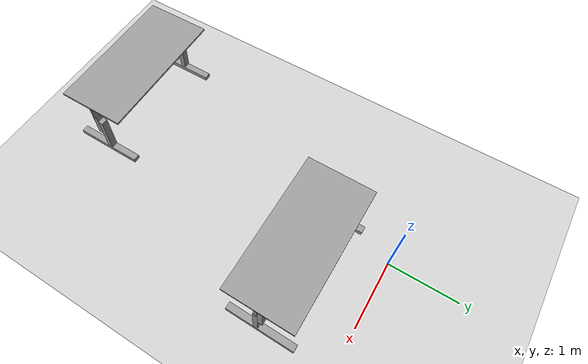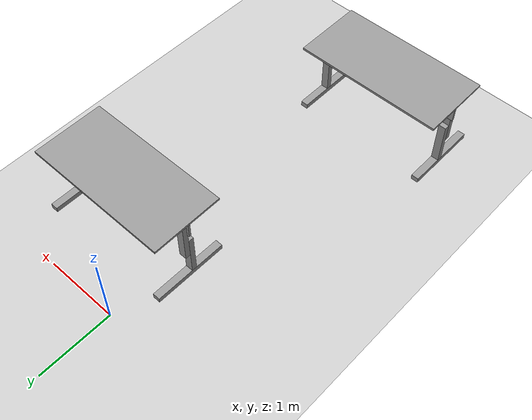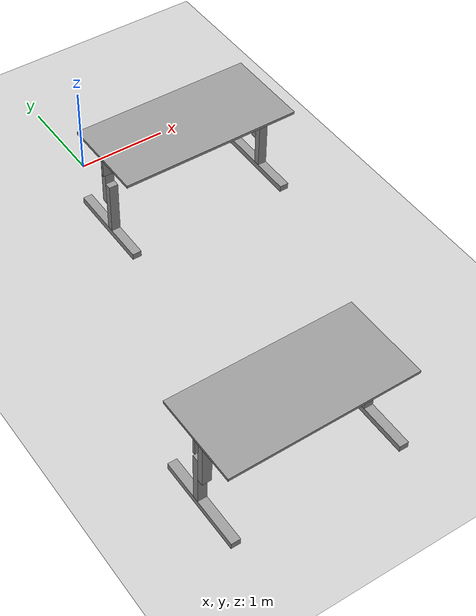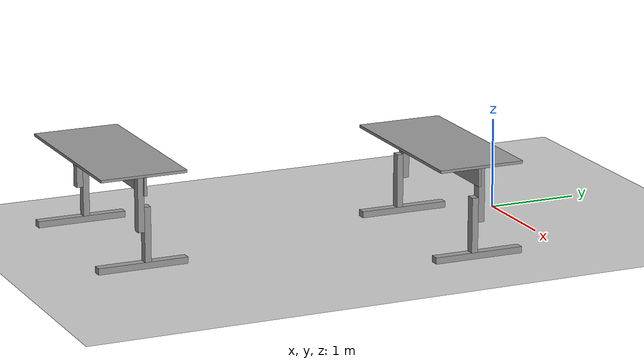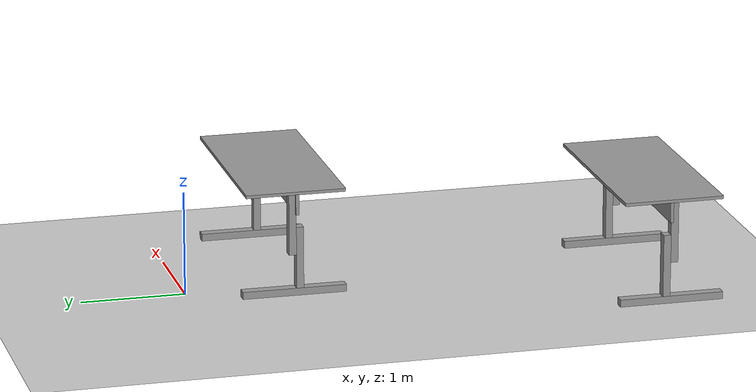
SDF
<sdf version="1.6">
 <world name="default">
  <model name="ground_plane">
   <static>1</static>
   <link name="link">
    <collision name="collision">
     <geometry><plane><normal>0 0 1</normal><size>100 100</size></plane></geometry>
     <surface>
      <contact><collide_bitmask>65535</collide_bitmask></contact>
      <friction><ode><mu>100</mu><mu2>50</mu2></ode></friction>
     </surface>
    </collision>
    <visual name="visual">
     <cast_shadows>0</cast_shadows>
     <geometry><plane><normal>0 0 1</normal><size>100 100</size></plane></geometry>
     <material>
      <script><uri>file://media/materials/scripts/gazebo.material</uri><name>Gazebo/Grey</name></script>
     </material>
    </visual>
   </link>
  </model>
  <model name="desk">
   <link name="link_0">
    <inertial>
     <mass>1</mass>
     <inertia>
      <ixx>0.166667</ixx>
      <ixy>0</ixy>
      <ixz>0</ixz>
      <iyy>0.166667</iyy>
      <iyz>0</iyz>
      <izz>0.166667</izz>
     </inertia>
    </inertial>
    <pose>-0.922434 0.005357 -0.386429 0 -0 0</pose>
    <visual name="visual">
     <geometry><box><size>0.1 1 0.07</size></box></geometry>
     <material>
      <lighting>1</lighting>
      <script><uri>file://media/materials/scripts/gazebo.material</uri><name>Gazebo/Grey</name></script>
      <shader type="pixel"><normal_map>__default__</normal_map></shader>
      <ambient>0.3 0.3 0.3 1</ambient>
      <diffuse>0.7 0.7 0.7 1</diffuse>
      <specular>0.01 0.01 0.01 1</specular>
      <emissive>0 0 0 1</emissive>
     </material>
    </visual>
    <collision name="collision">
     <geometry><box><size>0.1 1 0.07</size></box></geometry>
     <surface>
      <friction>
       <ode><mu>1</mu><mu2>1</mu2><fdir1>0 0 0</fdir1><slip1>0</slip1><slip2>0</slip2></ode>
       <torsional>
        <coefficient>1</coefficient>
        <patch_radius>0</patch_radius>
        <surface_radius>0</surface_radius>
        <use_patch_radius>1</use_patch_radius>
        <ode><slip>0</slip></ode>
       </torsional>
      </friction>
      <bounce><restitution_coefficient>0</restitution_coefficient><threshold>1e+06</threshold></bounce>
      <contact>
       <collide_without_contact>0</collide_without_contact>
       <collide_without_contact_bitmask>1</collide_without_contact_bitmask>
       <collide_bitmask>1</collide_bitmask>
       <ode>
        <soft_cfm>0</soft_cfm>
        <soft_erp>0.2</soft_erp>
        <kp>1e+13</kp>
        <kd>1</kd>
        <max_vel>0.01</max_vel>
        <min_depth>0</min_depth>
       </ode>
       <bullet>
        <split_impulse>1</split_impulse>
        <split_impulse_penetration_threshold>-0.01</split_impulse_penetration_threshold>
        <soft_cfm>0</soft_cfm>
        <soft_erp>0.2</soft_erp>
        <kp>1e+13</kp>
        <kd>1</kd>
       </bullet>
      </contact>
     </surface>
    </collision>
   </link>
   <link name="link_0_clone">
    <inertial>
     <mass>1</mass>
     <inertia>
      <ixx>0.166667</ixx>
      <ixy>0</ixy>
      <ixz>0</ixz>
      <iyy>0.166667</iyy>
      <iyz>0</iyz>
      <izz>0.166667</izz>
     </inertia>
    </inertial>
    <pose>0.913246 0.005357 -0.386429 0 -0 0</pose>
    <visual name="visual">
     <geometry><box><size>0.1 1 0.07</size></box></geometry>
     <material>
      <lighting>1</lighting>
      <script><uri>file://media/materials/scripts/gazebo.material</uri><name>Gazebo/Grey</name></script>
      <shader type="pixel"><normal_map>__default__</normal_map></shader>
      <ambient>0.3 0.3 0.3 1</ambient>
      <diffuse>0.7 0.7 0.7 1</diffuse>
      <specular>0.01 0.01 0.01 1</specular>
      <emissive>0 0 0 1</emissive>
     </material>
    </visual>
    <collision name="collision">
     <geometry><box><size>0.1 1 0.07</size></box></geometry>
     <surface>
      <friction>
       <ode><mu>1</mu><mu2>1</mu2><fdir1>0 0 0</fdir1><slip1>0</slip1><slip2>0</slip2></ode>
       <torsional>
        <coefficient>1</coefficient>
        <patch_radius>0</patch_radius>
        <surface_radius>0</surface_radius>
        <use_patch_radius>1</use_patch_radius>
        <ode><slip>0</slip></ode>
       </torsional>
      </friction>
      <bounce><restitution_coefficient>0</restitution_coefficient><threshold>1e+06</threshold></bounce>
      <contact>
       <collide_without_contact>0</collide_without_contact>
       <collide_without_contact_bitmask>1</collide_without_contact_bitmask>
       <collide_bitmask>1</collide_bitmask>
       <ode>
        <soft_cfm>0</soft_cfm>
        <soft_erp>0.2</soft_erp>
        <kp>1e+13</kp>
        <kd>1</kd>
        <max_vel>0.01</max_vel>
        <min_depth>0</min_depth>
       </ode>
       <bullet>
        <split_impulse>1</split_impulse>
        <split_impulse_penetration_threshold>-0.01</split_impulse_penetration_threshold>
        <soft_cfm>0</soft_cfm>
        <soft_erp>0.2</soft_erp>
        <kp>1e+13</kp>
        <kd>1</kd>
       </bullet>
      </contact>
     </surface>
    </collision>
   </link>
   <link name="link_1">
    <inertial>
     <mass>1</mass>
     <inertia>
      <ixx>0.166667</ixx>
      <ixy>0</ixy>
      <ixz>0</ixz>
      <iyy>0.166667</iyy>
      <iyz>0</iyz>
      <izz>0.166667</izz>
     </inertia>
    </inertial>
    <pose>-0.922434 -0.047143 -0.051429 0 -0 0</pose>
    <visual name="visual">
     <geometry><box><size>0.1 0.07 0.6</size></box></geometry>
     <material>
      <lighting>1</lighting>
      <script><uri>file://media/materials/scripts/gazebo.material</uri><name>Gazebo/Grey</name></script>
      <shader type="pixel"><normal_map>__default__</normal_map></shader>
      <ambient>0.3 0.3 0.3 1</ambient>
      <diffuse>0.7 0.7 0.7 1</diffuse>
      <specular>0.01 0.01 0.01 1</specular>
      <emissive>0 0 0 1</emissive>
     </material>
    </visual>
    <collision name="collision">
     <geometry><box><size>0.1 0.07 0.6</size></box></geometry>
     <surface>
      <friction>
       <ode><mu>1</mu><mu2>1</mu2><fdir1>0 0 0</fdir1><slip1>0</slip1><slip2>0</slip2></ode>
       <torsional>
        <coefficient>1</coefficient>
        <patch_radius>0</patch_radius>
        <surface_radius>0</surface_radius>
        <use_patch_radius>1</use_patch_radius>
        <ode><slip>0</slip></ode>
       </torsional>
      </friction>
      <bounce><restitution_coefficient>0</restitution_coefficient><threshold>1e+06</threshold></bounce>
      <contact>
       <collide_without_contact>0</collide_without_contact>
       <collide_without_contact_bitmask>1</collide_without_contact_bitmask>
       <collide_bitmask>1</collide_bitmask>
       <ode>
        <soft_cfm>0</soft_cfm>
        <soft_erp>0.2</soft_erp>
        <kp>1e+13</kp>
        <kd>1</kd>
        <max_vel>0.01</max_vel>
        <min_depth>0</min_depth>
       </ode>
       <bullet>
        <split_impulse>1</split_impulse>
        <split_impulse_penetration_threshold>-0.01</split_impulse_penetration_threshold>
        <soft_cfm>0</soft_cfm>
        <soft_erp>0.2</soft_erp>
        <kp>1e+13</kp>
        <kd>1</kd>
       </bullet>
      </contact>
     </surface>
    </collision>
   </link>
   <link name="link_1_clone">
    <inertial>
     <mass>1</mass>
     <inertia>
      <ixx>0.166667</ixx>
      <ixy>0</ixy>
      <ixz>0</ixz>
      <iyy>0.166667</iyy>
      <iyz>0</iyz>
      <izz>0.166667</izz>
     </inertia>
    </inertial>
    <pose>-0.922434 0.022857 0.278571 0 -0 0</pose>
    <visual name="visual">
     <geometry><box><size>0.1 0.07 0.6</size></box></geometry>
     <material>
      <lighting>1</lighting>
      <script><uri>file://media/materials/scripts/gazebo.material</uri><name>Gazebo/Grey</name></script>
      <shader type="pixel"><normal_map>__default__</normal_map></shader>
      <ambient>0.3 0.3 0.3 1</ambient>
      <diffuse>0.7 0.7 0.7 1</diffuse>
      <specular>0.01 0.01 0.01 1</specular>
      <emissive>0 0 0 1</emissive>
     </material>
    </visual>
    <collision name="collision">
     <geometry><box><size>0.1 0.07 0.6</size></box></geometry>
     <surface>
      <friction>
       <ode><mu>1</mu><mu2>1</mu2><fdir1>0 0 0</fdir1><slip1>0</slip1><slip2>0</slip2></ode>
       <torsional>
        <coefficient>1</coefficient>
        <patch_radius>0</patch_radius>
        <surface_radius>0</surface_radius>
        <use_patch_radius>1</use_patch_radius>
        <ode><slip>0</slip></ode>
       </torsional>
      </friction>
      <bounce><restitution_coefficient>0</restitution_coefficient><threshold>1e+06</threshold></bounce>
      <contact>
       <collide_without_contact>0</collide_without_contact>
       <collide_without_contact_bitmask>1</collide_without_contact_bitmask>
       <collide_bitmask>1</collide_bitmask>
       <ode>
        <soft_cfm>0</soft_cfm>
        <soft_erp>0.2</soft_erp>
        <kp>1e+13</kp>
        <kd>1</kd>
        <max_vel>0.01</max_vel>
        <min_depth>0</min_depth>
       </ode>
       <bullet>
        <split_impulse>1</split_impulse>
        <split_impulse_penetration_threshold>-0.01</split_impulse_penetration_threshold>
        <soft_cfm>0</soft_cfm>
        <soft_erp>0.2</soft_erp>
        <kp>1e+13</kp>
        <kd>1</kd>
       </bullet>
      </contact>
     </surface>
    </collision>
   </link>
   <link name="link_1_clone_0">
    <inertial>
     <mass>1</mass>
     <inertia>
      <ixx>0.166667</ixx>
      <ixy>0</ixy>
      <ixz>0</ixz>
      <iyy>0.166667</iyy>
      <iyz>0</iyz>
      <izz>0.166667</izz>
     </inertia>
    </inertial>
    <pose>0.913246 -0.047143 -0.051429 0 -0 0</pose>
    <visual name="visual">
     <geometry><box><size>0.1 0.07 0.6</size></box></geometry>
     <material>
      <lighting>1</lighting>
      <script><uri>file://media/materials/scripts/gazebo.material</uri><name>Gazebo/Grey</name></script>
      <shader type="pixel"><normal_map>__default__</normal_map></shader>
      <ambient>0.3 0.3 0.3 1</ambient>
      <diffuse>0.7 0.7 0.7 1</diffuse>
      <specular>0.01 0.01 0.01 1</specular>
      <emissive>0 0 0 1</emissive>
     </material>
    </visual>
    <collision name="collision">
     <geometry><box><size>0.1 0.07 0.6</size></box></geometry>
     <surface>
      <friction>
       <ode><mu>1</mu><mu2>1</mu2><fdir1>0 0 0</fdir1><slip1>0</slip1><slip2>0</slip2></ode>
       <torsional>
        <coefficient>1</coefficient>
        <patch_radius>0</patch_radius>
        <surface_radius>0</surface_radius>
        <use_patch_radius>1</use_patch_radius>
        <ode><slip>0</slip></ode>
       </torsional>
      </friction>
      <bounce><restitution_coefficient>0</restitution_coefficient><threshold>1e+06</threshold></bounce>
      <contact>
       <collide_without_contact>0</collide_without_contact>
       <collide_without_contact_bitmask>1</collide_without_contact_bitmask>
       <collide_bitmask>1</collide_bitmask>
       <ode>
        <soft_cfm>0</soft_cfm>
        <soft_erp>0.2</soft_erp>
        <kp>1e+13</kp>
        <kd>1</kd>
        <max_vel>0.01</max_vel>
        <min_depth>0</min_depth>
       </ode>
       <bullet>
        <split_impulse>1</split_impulse>
        <split_impulse_penetration_threshold>-0.01</split_impulse_penetration_threshold>
        <soft_cfm>0</soft_cfm>
        <soft_erp>0.2</soft_erp>
        <kp>1e+13</kp>
        <kd>1</kd>
       </bullet>
      </contact>
     </surface>
    </collision>
   </link>
   <link name="link_1_clone_clone">
    <inertial>
     <mass>1</mass>
     <inertia>
      <ixx>0.166667</ixx>
      <ixy>0</ixy>
      <ixz>0</ixz>
      <iyy>0.166667</iyy>
      <iyz>0</iyz>
      <izz>0.166667</izz>
     </inertia>
    </inertial>
    <pose>0.913246 0.022857 0.278571 0 -0 0</pose>
    <visual name="visual">
     <geometry><box><size>0.1 0.07 0.6</size></box></geometry>
     <material>
      <lighting>1</lighting>
      <script><uri>file://media/materials/scripts/gazebo.material</uri><name>Gazebo/Grey</name></script>
      <shader type="pixel"><normal_map>__default__</normal_map></shader>
      <ambient>0.3 0.3 0.3 1</ambient>
      <diffuse>0.7 0.7 0.7 1</diffuse>
      <specular>0.01 0.01 0.01 1</specular>
      <emissive>0 0 0 1</emissive>
     </material>
    </visual>
    <collision name="collision">
     <geometry><box><size>0.1 0.07 0.6</size></box></geometry>
     <surface>
      <friction>
       <ode><mu>1</mu><mu2>1</mu2><fdir1>0 0 0</fdir1><slip1>0</slip1><slip2>0</slip2></ode>
       <torsional>
        <coefficient>1</coefficient>
        <patch_radius>0</patch_radius>
        <surface_radius>0</surface_radius>
        <use_patch_radius>1</use_patch_radius>
        <ode><slip>0</slip></ode>
       </torsional>
      </friction>
      <bounce><restitution_coefficient>0</restitution_coefficient><threshold>1e+06</threshold></bounce>
      <contact>
       <collide_without_contact>0</collide_without_contact>
       <collide_without_contact_bitmask>1</collide_without_contact_bitmask>
       <collide_bitmask>1</collide_bitmask>
       <ode>
        <soft_cfm>0</soft_cfm>
        <soft_erp>0.2</soft_erp>
        <kp>1e+13</kp>
        <kd>1</kd>
        <max_vel>0.01</max_vel>
        <min_depth>0</min_depth>
       </ode>
       <bullet>
        <split_impulse>1</split_impulse>
        <split_impulse_penetration_threshold>-0.01</split_impulse_penetration_threshold>
        <soft_cfm>0</soft_cfm>
        <soft_erp>0.2</soft_erp>
        <kp>1e+13</kp>
        <kd>1</kd>
       </bullet>
      </contact>
     </surface>
    </collision>
   </link>
   <link name="link_2">
    <inertial>
     <mass>1</mass>
     <inertia>
      <ixx>0.166667</ixx>
      <ixy>0</ixy>
      <ixz>0</ixz>
      <iyy>0.166667</iyy>
      <iyz>0</iyz>
      <izz>0.166667</izz>
     </inertia>
    </inertial>
    <pose>-0.002434 -0.017143 0.478571 0 -0 0</pose>
    <visual name="visual">
     <geometry><box><size>2 0.03 0.2</size></box></geometry>
     <material>
      <lighting>1</lighting>
      <script><uri>file://media/materials/scripts/gazebo.material</uri><name>Gazebo/Grey</name></script>
      <shader type="pixel"><normal_map>__default__</normal_map></shader>
      <ambient>0.3 0.3 0.3 1</ambient>
      <diffuse>0.7 0.7 0.7 1</diffuse>
      <specular>0.01 0.01 0.01 1</specular>
      <emissive>0 0 0 1</emissive>
     </material>
    </visual>
    <collision name="collision">
     <geometry><box><size>2 0.03 0.2</size></box></geometry>
     <surface>
      <friction>
       <ode><mu>1</mu><mu2>1</mu2><fdir1>0 0 0</fdir1><slip1>0</slip1><slip2>0</slip2></ode>
       <torsional>
        <coefficient>1</coefficient>
        <patch_radius>0</patch_radius>
        <surface_radius>0</surface_radius>
        <use_patch_radius>1</use_patch_radius>
        <ode><slip>0</slip></ode>
       </torsional>
      </friction>
      <bounce><restitution_coefficient>0</restitution_coefficient><threshold>1e+06</threshold></bounce>
      <contact>
       <collide_without_contact>0</collide_without_contact>
       <collide_without_contact_bitmask>1</collide_without_contact_bitmask>
       <collide_bitmask>1</collide_bitmask>
       <ode>
        <soft_cfm>0</soft_cfm>
        <soft_erp>0.2</soft_erp>
        <kp>1e+13</kp>
        <kd>1</kd>
        <max_vel>0.01</max_vel>
        <min_depth>0</min_depth>
       </ode>
       <bullet>
        <split_impulse>1</split_impulse>
        <split_impulse_penetration_threshold>-0.01</split_impulse_penetration_threshold>
        <soft_cfm>0</soft_cfm>
        <soft_erp>0.2</soft_erp>
        <kp>1e+13</kp>
        <kd>1</kd>
       </bullet>
      </contact>
     </surface>
    </collision>
   </link>
   <link name="link_3">
    <inertial>
     <mass>1.59334</mass>
     <inertia>
      <ixx>0.121473</ixx>
      <ixy>0</ixy>
      <ixz>0</ixz>
      <iyy>0.531234</iyy>
      <iyz>0</iyz>
      <izz>0.652468</izz>
     </inertia>
    </inertial>
    <pose>0.001619 -0.000505 0.588571 0 -0 0.006324</pose>
    <visual name="visual">
     <geometry><box><size>2 0.956011 0.03</size></box></geometry>
     <material>
      <lighting>1</lighting>
      <script><uri>file://media/materials/scripts/gazebo.material</uri><name>Gazebo/Grey</name></script>
      <shader type="pixel"><normal_map>__default__</normal_map></shader>
      <ambient>0.3 0.3 0.3 1</ambient>
      <diffuse>0.7 0.7 0.7 1</diffuse>
      <specular>0.01 0.01 0.01 1</specular>
      <emissive>0 0 0 1</emissive>
     </material>
    </visual>
    <collision name="collision">
     <geometry><box><size>2 0.956011 0.03</size></box></geometry>
     <surface>
      <friction>
       <ode><mu>1</mu><mu2>1</mu2><fdir1>0 0 0</fdir1><slip1>0</slip1><slip2>0</slip2></ode>
       <torsional>
        <coefficient>1</coefficient>
        <patch_radius>0</patch_radius>
        <surface_radius>0</surface_radius>
        <use_patch_radius>1</use_patch_radius>
        <ode><slip>0</slip></ode>
       </torsional>
      </friction>
      <bounce><restitution_coefficient>0</restitution_coefficient><threshold>1e+06</threshold></bounce>
      <contact>
       <collide_without_contact>0</collide_without_contact>
       <collide_without_contact_bitmask>1</collide_without_contact_bitmask>
       <collide_bitmask>1</collide_bitmask>
       <ode>
        <soft_cfm>0</soft_cfm>
        <soft_erp>0.2</soft_erp>
        <kp>1e+13</kp>
        <kd>1</kd>
        <max_vel>0.01</max_vel>
        <min_depth>0</min_depth>
       </ode>
       <bullet>
        <split_impulse>1</split_impulse>
        <split_impulse_penetration_threshold>-0.01</split_impulse_penetration_threshold>
        <soft_cfm>0</soft_cfm>
        <soft_erp>0.2</soft_erp>
        <kp>1e+13</kp>
        <kd>1</kd>
       </bullet>
      </contact>
     </surface>
    </collision>
   </link>
   <joint name="link_0_JOINT_0" type="fixed">
    <parent>link_0</parent>
    <child>link_1</child>
    <physics>
     <ode><limit><cfm>0</cfm><erp>0.2</erp></limit><suspension><cfm>0</cfm><erp>0.2</erp></suspension></ode>
    </physics>
   </joint>
   <joint name="link_0_clone_JOINT_2" type="fixed">
    <parent>link_0_clone</parent>
    <child>link_1_clone_0</child>
    <physics>
     <ode><limit><cfm>0</cfm><erp>0.2</erp></limit><suspension><cfm>0</cfm><erp>0.2</erp></suspension></ode>
    </physics>
   </joint>
   <joint name="link_1_clone_JOINT_4" type="fixed">
    <parent>link_1_clone</parent>
    <child>link_2</child>
    <physics>
     <ode><limit><cfm>0</cfm><erp>0.2</erp></limit><suspension><cfm>0</cfm><erp>0.2</erp></suspension></ode>
    </physics>
   </joint>
   <joint name="link_1_clone_clone_JOINT_5" type="fixed">
    <parent>link_1_clone_clone</parent>
    <child>link_2</child>
    <physics>
     <ode><limit><cfm>0</cfm><erp>0.2</erp></limit><suspension><cfm>0</cfm><erp>0.2</erp></suspension></ode>
    </physics>
   </joint>
   <joint name="link_2_JOINT_6" type="fixed">
    <parent>link_2</parent>
    <child>link_3</child>
    <physics>
     <ode><limit><cfm>0</cfm><erp>0.2</erp></limit><suspension><cfm>0</cfm><erp>0.2</erp></suspension></ode>
    </physics>
   </joint>
   <joint name="prismatic_1" type="prismatic">
    <parent>link_1</parent>
    <child>link_1_clone</child>
    <axis>
     <xyz>0 0 1</xyz>
     <use_parent_model_frame>0</use_parent_model_frame>
     <limit><lower>-0.1</lower><upper>0.2</upper><effort>-1</effort><velocity>-1</velocity></limit>
     <dynamics>
      <spring_reference>0</spring_reference>
      <spring_stiffness>0</spring_stiffness>
      <damping>0</damping>
      <friction>0</friction>
     </dynamics>
    </axis>
    <physics>
     <ode><limit><cfm>0</cfm><erp>0.2</erp></limit><suspension><cfm>0</cfm><erp>0.2</erp></suspension></ode>
    </physics>
   </joint>
   <joint name="prismatic_2" type="prismatic">
    <parent>link_1_clone_0</parent>
    <child>link_1_clone_clone</child>
    <axis>
     <xyz>0 0 1</xyz>
     <use_parent_model_frame>0</use_parent_model_frame>
     <limit><lower>-0.1</lower><upper>0.2</upper><effort>-1</effort><velocity>-1</velocity></limit>
     <dynamics>
      <spring_reference>0</spring_reference>
      <spring_stiffness>0</spring_stiffness>
      <damping>0</damping>
      <friction>0</friction>
     </dynamics>
    </axis>
    <physics>
     <ode><limit><cfm>0</cfm><erp>0.2</erp></limit><suspension><cfm>0</cfm><erp>0.2</erp></suspension></ode>
    </physics>
   </joint>
   <static>0</static>
   <pose>0.683537 -1.00333 0.42144 -7e-06 -1.4e-05 -0.00717</pose>
  </model>
  <model name="desk_clone">
   <link name="link_0">
    <inertial>
     <mass>1</mass>
     <inertia>
      <ixx>0.166667</ixx>
      <ixy>0</ixy>
      <ixz>0</ixz>
      <iyy>0.166667</iyy>
      <iyz>0</iyz>
      <izz>0.166667</izz>
     </inertia>
    </inertial>
    <pose>-0.922434 0.005357 -0.386429 0 -0 0</pose>
    <visual name="visual">
     <geometry><box><size>0.1 1 0.07</size></box></geometry>
     <material>
      <lighting>1</lighting>
      <script><uri>file://media/materials/scripts/gazebo.material</uri><name>Gazebo/Grey</name></script>
      <shader type="pixel"><normal_map>__default__</normal_map></shader>
      <ambient>0.3 0.3 0.3 1</ambient>
      <diffuse>0.7 0.7 0.7 1</diffuse>
      <specular>0.01 0.01 0.01 1</specular>
      <emissive>0 0 0 1</emissive>
     </material>
    </visual>
    <collision name="collision">
     <geometry><box><size>0.1 1 0.07</size></box></geometry>
     <surface>
      <friction>
       <ode><mu>1</mu><mu2>1</mu2><fdir1>0 0 0</fdir1><slip1>0</slip1><slip2>0</slip2></ode>
       <torsional>
        <coefficient>1</coefficient>
        <patch_radius>0</patch_radius>
        <surface_radius>0</surface_radius>
        <use_patch_radius>1</use_patch_radius>
        <ode><slip>0</slip></ode>
       </torsional>
      </friction>
      <bounce><restitution_coefficient>0</restitution_coefficient><threshold>1e+06</threshold></bounce>
      <contact>
       <collide_without_contact>0</collide_without_contact>
       <collide_without_contact_bitmask>1</collide_without_contact_bitmask>
       <collide_bitmask>1</collide_bitmask>
       <ode>
        <soft_cfm>0</soft_cfm>
        <soft_erp>0.2</soft_erp>
        <kp>1e+13</kp>
        <kd>1</kd>
        <max_vel>0.01</max_vel>
        <min_depth>0</min_depth>
       </ode>
       <bullet>
        <split_impulse>1</split_impulse>
        <split_impulse_penetration_threshold>-0.01</split_impulse_penetration_threshold>
        <soft_cfm>0</soft_cfm>
        <soft_erp>0.2</soft_erp>
        <kp>1e+13</kp>
        <kd>1</kd>
       </bullet>
      </contact>
     </surface>
    </collision>
   </link>
   <link name="link_0_clone">
    <inertial>
     <mass>1</mass>
     <inertia>
      <ixx>0.166667</ixx>
      <ixy>0</ixy>
      <ixz>0</ixz>
      <iyy>0.166667</iyy>
      <iyz>0</iyz>
      <izz>0.166667</izz>
     </inertia>
    </inertial>
    <pose>0.913246 0.005357 -0.386429 0 -0 0</pose>
    <visual name="visual">
     <geometry><box><size>0.1 1 0.07</size></box></geometry>
     <material>
      <lighting>1</lighting>
      <script><uri>file://media/materials/scripts/gazebo.material</uri><name>Gazebo/Grey</name></script>
      <shader type="pixel"><normal_map>__default__</normal_map></shader>
      <ambient>0.3 0.3 0.3 1</ambient>
      <diffuse>0.7 0.7 0.7 1</diffuse>
      <specular>0.01 0.01 0.01 1</specular>
      <emissive>0 0 0 1</emissive>
     </material>
    </visual>
    <collision name="collision">
     <geometry><box><size>0.1 1 0.07</size></box></geometry>
     <surface>
      <friction>
       <ode><mu>1</mu><mu2>1</mu2><fdir1>0 0 0</fdir1><slip1>0</slip1><slip2>0</slip2></ode>
       <torsional>
        <coefficient>1</coefficient>
        <patch_radius>0</patch_radius>
        <surface_radius>0</surface_radius>
        <use_patch_radius>1</use_patch_radius>
        <ode><slip>0</slip></ode>
       </torsional>
      </friction>
      <bounce><restitution_coefficient>0</restitution_coefficient><threshold>1e+06</threshold></bounce>
      <contact>
       <collide_without_contact>0</collide_without_contact>
       <collide_without_contact_bitmask>1</collide_without_contact_bitmask>
       <collide_bitmask>1</collide_bitmask>
       <ode>
        <soft_cfm>0</soft_cfm>
        <soft_erp>0.2</soft_erp>
        <kp>1e+13</kp>
        <kd>1</kd>
        <max_vel>0.01</max_vel>
        <min_depth>0</min_depth>
       </ode>
       <bullet>
        <split_impulse>1</split_impulse>
        <split_impulse_penetration_threshold>-0.01</split_impulse_penetration_threshold>
        <soft_cfm>0</soft_cfm>
        <soft_erp>0.2</soft_erp>
        <kp>1e+13</kp>
        <kd>1</kd>
       </bullet>
      </contact>
     </surface>
    </collision>
   </link>
   <link name="link_1">
    <inertial>
     <mass>1</mass>
     <inertia>
      <ixx>0.166667</ixx>
      <ixy>0</ixy>
      <ixz>0</ixz>
      <iyy>0.166667</iyy>
      <iyz>0</iyz>
      <izz>0.166667</izz>
     </inertia>
    </inertial>
    <pose>-0.922434 -0.047143 -0.051429 0 -0 0</pose>
    <visual name="visual">
     <geometry><box><size>0.1 0.07 0.6</size></box></geometry>
     <material>
      <lighting>1</lighting>
      <script><uri>file://media/materials/scripts/gazebo.material</uri><name>Gazebo/Grey</name></script>
      <shader type="pixel"><normal_map>__default__</normal_map></shader>
      <ambient>0.3 0.3 0.3 1</ambient>
      <diffuse>0.7 0.7 0.7 1</diffuse>
      <specular>0.01 0.01 0.01 1</specular>
      <emissive>0 0 0 1</emissive>
     </material>
    </visual>
    <collision name="collision">
     <geometry><box><size>0.1 0.07 0.6</size></box></geometry>
     <surface>
      <friction>
       <ode><mu>1</mu><mu2>1</mu2><fdir1>0 0 0</fdir1><slip1>0</slip1><slip2>0</slip2></ode>
       <torsional>
        <coefficient>1</coefficient>
        <patch_radius>0</patch_radius>
        <surface_radius>0</surface_radius>
        <use_patch_radius>1</use_patch_radius>
        <ode><slip>0</slip></ode>
       </torsional>
      </friction>
      <bounce><restitution_coefficient>0</restitution_coefficient><threshold>1e+06</threshold></bounce>
      <contact>
       <collide_without_contact>0</collide_without_contact>
       <collide_without_contact_bitmask>1</collide_without_contact_bitmask>
       <collide_bitmask>1</collide_bitmask>
       <ode>
        <soft_cfm>0</soft_cfm>
        <soft_erp>0.2</soft_erp>
        <kp>1e+13</kp>
        <kd>1</kd>
        <max_vel>0.01</max_vel>
        <min_depth>0</min_depth>
       </ode>
       <bullet>
        <split_impulse>1</split_impulse>
        <split_impulse_penetration_threshold>-0.01</split_impulse_penetration_threshold>
        <soft_cfm>0</soft_cfm>
        <soft_erp>0.2</soft_erp>
        <kp>1e+13</kp>
        <kd>1</kd>
       </bullet>
      </contact>
     </surface>
    </collision>
   </link>
   <link name="link_1_clone">
    <inertial>
     <mass>1</mass>
     <inertia>
      <ixx>0.166667</ixx>
      <ixy>0</ixy>
      <ixz>0</ixz>
      <iyy>0.166667</iyy>
      <iyz>0</iyz>
      <izz>0.166667</izz>
     </inertia>
    </inertial>
    <pose>-0.922434 0.022857 0.278571 0 -0 0</pose>
    <visual name="visual">
     <geometry><box><size>0.1 0.07 0.6</size></box></geometry>
     <material>
      <lighting>1</lighting>
      <script><uri>file://media/materials/scripts/gazebo.material</uri><name>Gazebo/Grey</name></script>
      <shader type="pixel"><normal_map>__default__</normal_map></shader>
      <ambient>0.3 0.3 0.3 1</ambient>
      <diffuse>0.7 0.7 0.7 1</diffuse>
      <specular>0.01 0.01 0.01 1</specular>
      <emissive>0 0 0 1</emissive>
     </material>
    </visual>
    <collision name="collision">
     <geometry><box><size>0.1 0.07 0.6</size></box></geometry>
     <surface>
      <friction>
       <ode><mu>1</mu><mu2>1</mu2><fdir1>0 0 0</fdir1><slip1>0</slip1><slip2>0</slip2></ode>
       <torsional>
        <coefficient>1</coefficient>
        <patch_radius>0</patch_radius>
        <surface_radius>0</surface_radius>
        <use_patch_radius>1</use_patch_radius>
        <ode><slip>0</slip></ode>
       </torsional>
      </friction>
      <bounce><restitution_coefficient>0</restitution_coefficient><threshold>1e+06</threshold></bounce>
      <contact>
       <collide_without_contact>0</collide_without_contact>
       <collide_without_contact_bitmask>1</collide_without_contact_bitmask>
       <collide_bitmask>1</collide_bitmask>
       <ode>
        <soft_cfm>0</soft_cfm>
        <soft_erp>0.2</soft_erp>
        <kp>1e+13</kp>
        <kd>1</kd>
        <max_vel>0.01</max_vel>
        <min_depth>0</min_depth>
       </ode>
       <bullet>
        <split_impulse>1</split_impulse>
        <split_impulse_penetration_threshold>-0.01</split_impulse_penetration_threshold>
        <soft_cfm>0</soft_cfm>
        <soft_erp>0.2</soft_erp>
        <kp>1e+13</kp>
        <kd>1</kd>
       </bullet>
      </contact>
     </surface>
    </collision>
   </link>
   <link name="link_1_clone_0">
    <inertial>
     <mass>1</mass>
     <inertia>
      <ixx>0.166667</ixx>
      <ixy>0</ixy>
      <ixz>0</ixz>
      <iyy>0.166667</iyy>
      <iyz>0</iyz>
      <izz>0.166667</izz>
     </inertia>
    </inertial>
    <pose>0.913246 -0.047143 -0.051429 0 -0 0</pose>
    <visual name="visual">
     <geometry><box><size>0.1 0.07 0.6</size></box></geometry>
     <material>
      <lighting>1</lighting>
      <script><uri>file://media/materials/scripts/gazebo.material</uri><name>Gazebo/Grey</name></script>
      <shader type="pixel"><normal_map>__default__</normal_map></shader>
      <ambient>0.3 0.3 0.3 1</ambient>
      <diffuse>0.7 0.7 0.7 1</diffuse>
      <specular>0.01 0.01 0.01 1</specular>
      <emissive>0 0 0 1</emissive>
     </material>
    </visual>
    <collision name="collision">
     <geometry><box><size>0.1 0.07 0.6</size></box></geometry>
     <surface>
      <friction>
       <ode><mu>1</mu><mu2>1</mu2><fdir1>0 0 0</fdir1><slip1>0</slip1><slip2>0</slip2></ode>
       <torsional>
        <coefficient>1</coefficient>
        <patch_radius>0</patch_radius>
        <surface_radius>0</surface_radius>
        <use_patch_radius>1</use_patch_radius>
        <ode><slip>0</slip></ode>
       </torsional>
      </friction>
      <bounce><restitution_coefficient>0</restitution_coefficient><threshold>1e+06</threshold></bounce>
      <contact>
       <collide_without_contact>0</collide_without_contact>
       <collide_without_contact_bitmask>1</collide_without_contact_bitmask>
       <collide_bitmask>1</collide_bitmask>
       <ode>
        <soft_cfm>0</soft_cfm>
        <soft_erp>0.2</soft_erp>
        <kp>1e+13</kp>
        <kd>1</kd>
        <max_vel>0.01</max_vel>
        <min_depth>0</min_depth>
       </ode>
       <bullet>
        <split_impulse>1</split_impulse>
        <split_impulse_penetration_threshold>-0.01</split_impulse_penetration_threshold>
        <soft_cfm>0</soft_cfm>
        <soft_erp>0.2</soft_erp>
        <kp>1e+13</kp>
        <kd>1</kd>
       </bullet>
      </contact>
     </surface>
    </collision>
   </link>
   <link name="link_1_clone_clone">
    <inertial>
     <mass>1</mass>
     <inertia>
      <ixx>0.166667</ixx>
      <ixy>0</ixy>
      <ixz>0</ixz>
      <iyy>0.166667</iyy>
      <iyz>0</iyz>
      <izz>0.166667</izz>
     </inertia>
    </inertial>
    <pose>0.913246 0.022857 0.278571 0 -0 0</pose>
    <visual name="visual">
     <geometry><box><size>0.1 0.07 0.6</size></box></geometry>
     <material>
      <lighting>1</lighting>
      <script><uri>file://media/materials/scripts/gazebo.material</uri><name>Gazebo/Grey</name></script>
      <shader type="pixel"><normal_map>__default__</normal_map></shader>
      <ambient>0.3 0.3 0.3 1</ambient>
      <diffuse>0.7 0.7 0.7 1</diffuse>
      <specular>0.01 0.01 0.01 1</specular>
      <emissive>0 0 0 1</emissive>
     </material>
    </visual>
    <collision name="collision">
     <geometry><box><size>0.1 0.07 0.6</size></box></geometry>
     <surface>
      <friction>
       <ode><mu>1</mu><mu2>1</mu2><fdir1>0 0 0</fdir1><slip1>0</slip1><slip2>0</slip2></ode>
       <torsional>
        <coefficient>1</coefficient>
        <patch_radius>0</patch_radius>
        <surface_radius>0</surface_radius>
        <use_patch_radius>1</use_patch_radius>
        <ode><slip>0</slip></ode>
       </torsional>
      </friction>
      <bounce><restitution_coefficient>0</restitution_coefficient><threshold>1e+06</threshold></bounce>
      <contact>
       <collide_without_contact>0</collide_without_contact>
       <collide_without_contact_bitmask>1</collide_without_contact_bitmask>
       <collide_bitmask>1</collide_bitmask>
       <ode>
        <soft_cfm>0</soft_cfm>
        <soft_erp>0.2</soft_erp>
        <kp>1e+13</kp>
        <kd>1</kd>
        <max_vel>0.01</max_vel>
        <min_depth>0</min_depth>
       </ode>
       <bullet>
        <split_impulse>1</split_impulse>
        <split_impulse_penetration_threshold>-0.01</split_impulse_penetration_threshold>
        <soft_cfm>0</soft_cfm>
        <soft_erp>0.2</soft_erp>
        <kp>1e+13</kp>
        <kd>1</kd>
       </bullet>
      </contact>
     </surface>
    </collision>
   </link>
   <link name="link_2">
    <inertial>
     <mass>1</mass>
     <inertia>
      <ixx>0.166667</ixx>
      <ixy>0</ixy>
      <ixz>0</ixz>
      <iyy>0.166667</iyy>
      <iyz>0</iyz>
      <izz>0.166667</izz>
     </inertia>
    </inertial>
    <pose>-0.002434 -0.017143 0.478571 0 -0 0</pose>
    <visual name="visual">
     <geometry><box><size>2 0.03 0.2</size></box></geometry>
     <material>
      <lighting>1</lighting>
      <script><uri>file://media/materials/scripts/gazebo.material</uri><name>Gazebo/Grey</name></script>
      <shader type="pixel"><normal_map>__default__</normal_map></shader>
      <ambient>0.3 0.3 0.3 1</ambient>
      <diffuse>0.7 0.7 0.7 1</diffuse>
      <specular>0.01 0.01 0.01 1</specular>
      <emissive>0 0 0 1</emissive>
     </material>
    </visual>
    <collision name="collision">
     <geometry><box><size>2 0.03 0.2</size></box></geometry>
     <surface>
      <friction>
       <ode><mu>1</mu><mu2>1</mu2><fdir1>0 0 0</fdir1><slip1>0</slip1><slip2>0</slip2></ode>
       <torsional>
        <coefficient>1</coefficient>
        <patch_radius>0</patch_radius>
        <surface_radius>0</surface_radius>
        <use_patch_radius>1</use_patch_radius>
        <ode><slip>0</slip></ode>
       </torsional>
      </friction>
      <bounce><restitution_coefficient>0</restitution_coefficient><threshold>1e+06</threshold></bounce>
      <contact>
       <collide_without_contact>0</collide_without_contact>
       <collide_without_contact_bitmask>1</collide_without_contact_bitmask>
       <collide_bitmask>1</collide_bitmask>
       <ode>
        <soft_cfm>0</soft_cfm>
        <soft_erp>0.2</soft_erp>
        <kp>1e+13</kp>
        <kd>1</kd>
        <max_vel>0.01</max_vel>
        <min_depth>0</min_depth>
       </ode>
       <bullet>
        <split_impulse>1</split_impulse>
        <split_impulse_penetration_threshold>-0.01</split_impulse_penetration_threshold>
        <soft_cfm>0</soft_cfm>
        <soft_erp>0.2</soft_erp>
        <kp>1e+13</kp>
        <kd>1</kd>
       </bullet>
      </contact>
     </surface>
    </collision>
   </link>
   <link name="link_3">
    <inertial>
     <mass>1.59334</mass>
     <inertia>
      <ixx>0.121473</ixx>
      <ixy>0</ixy>
      <ixz>0</ixz>
      <iyy>0.531234</iyy>
      <iyz>0</iyz>
      <izz>0.652468</izz>
     </inertia>
    </inertial>
    <pose>0.001619 -0.000505 0.588571 0 -0 0.006324</pose>
    <visual name="visual">
     <geometry><box><size>2 0.956011 0.03</size></box></geometry>
     <material>
      <lighting>1</lighting>
      <script><uri>file://media/materials/scripts/gazebo.material</uri><name>Gazebo/Grey</name></script>
      <shader type="pixel"><normal_map>__default__</normal_map></shader>
      <ambient>0.3 0.3 0.3 1</ambient>
      <diffuse>0.7 0.7 0.7 1</diffuse>
      <specular>0.01 0.01 0.01 1</specular>
      <emissive>0 0 0 1</emissive>
     </material>
    </visual>
    <collision name="collision">
     <geometry><box><size>2 0.956011 0.03</size></box></geometry>
     <surface>
      <friction>
       <ode><mu>1</mu><mu2>1</mu2><fdir1>0 0 0</fdir1><slip1>0</slip1><slip2>0</slip2></ode>
       <torsional>
        <coefficient>1</coefficient>
        <patch_radius>0</patch_radius>
        <surface_radius>0</surface_radius>
        <use_patch_radius>1</use_patch_radius>
        <ode><slip>0</slip></ode>
       </torsional>
      </friction>
      <bounce><restitution_coefficient>0</restitution_coefficient><threshold>1e+06</threshold></bounce>
      <contact>
       <collide_without_contact>0</collide_without_contact>
       <collide_without_contact_bitmask>1</collide_without_contact_bitmask>
       <collide_bitmask>1</collide_bitmask>
       <ode>
        <soft_cfm>0</soft_cfm>
        <soft_erp>0.2</soft_erp>
        <kp>1e+13</kp>
        <kd>1</kd>
        <max_vel>0.01</max_vel>
        <min_depth>0</min_depth>
       </ode>
       <bullet>
        <split_impulse>1</split_impulse>
        <split_impulse_penetration_threshold>-0.01</split_impulse_penetration_threshold>
        <soft_cfm>0</soft_cfm>
        <soft_erp>0.2</soft_erp>
        <kp>1e+13</kp>
        <kd>1</kd>
       </bullet>
      </contact>
     </surface>
    </collision>
   </link>
   <joint name="link_0_JOINT_0" type="fixed">
    <parent>link_0</parent>
    <child>link_1</child>
    <physics>
     <ode><limit><cfm>0</cfm><erp>0.2</erp></limit><suspension><cfm>0</cfm><erp>0.2</erp></suspension></ode>
    </physics>
   </joint>
   <joint name="link_0_clone_JOINT_2" type="fixed">
    <parent>link_0_clone</parent>
    <child>link_1_clone_0</child>
    <physics>
     <ode><limit><cfm>0</cfm><erp>0.2</erp></limit><suspension><cfm>0</cfm><erp>0.2</erp></suspension></ode>
    </physics>
   </joint>
   <joint name="link_1_clone_JOINT_4" type="fixed">
    <parent>link_1_clone</parent>
    <child>link_2</child>
    <physics>
     <ode><limit><cfm>0</cfm><erp>0.2</erp></limit><suspension><cfm>0</cfm><erp>0.2</erp></suspension></ode>
    </physics>
   </joint>
   <joint name="link_1_clone_clone_JOINT_5" type="fixed">
    <parent>link_1_clone_clone</parent>
    <child>link_2</child>
    <physics>
     <ode><limit><cfm>0</cfm><erp>0.2</erp></limit><suspension><cfm>0</cfm><erp>0.2</erp></suspension></ode>
    </physics>
   </joint>
   <joint name="link_2_JOINT_6" type="fixed">
    <parent>link_2</parent>
    <child>link_3</child>
    <physics>
     <ode><limit><cfm>0</cfm><erp>0.2</erp></limit><suspension><cfm>0</cfm><erp>0.2</erp></suspension></ode>
    </physics>
   </joint>
   <joint name="prismatic_1" type="prismatic">
    <parent>link_1</parent>
    <child>link_1_clone</child>
    <axis>
     <xyz>0 0 1</xyz>
     <use_parent_model_frame>0</use_parent_model_frame>
     <limit><lower>-0.1</lower><upper>0.2</upper><effort>-1</effort><velocity>-1</velocity></limit>
     <dynamics>
      <spring_reference>0</spring_reference>
      <spring_stiffness>0</spring_stiffness>
      <damping>0</damping>
      <friction>0</friction>
     </dynamics>
    </axis>
    <physics>
     <ode><limit><cfm>0</cfm><erp>0.2</erp></limit><suspension><cfm>0</cfm><erp>0.2</erp></suspension></ode>
    </physics>
   </joint>
   <joint name="prismatic_2" type="prismatic">
    <parent>link_1_clone_0</parent>
    <child>link_1_clone_clone</child>
    <axis>
     <xyz>0 0 1</xyz>
     <use_parent_model_frame>0</use_parent_model_frame>
     <limit><lower>-0.1</lower><upper>0.2</upper><effort>-1</effort><velocity>-1</velocity></limit>
     <dynamics>
      <spring_reference>0</spring_reference>
      <spring_stiffness>0</spring_stiffness>
      <damping>0</damping>
      <friction>0</friction>
     </dynamics>
    </axis>
    <physics>
     <ode><limit><cfm>0</cfm><erp>0.2</erp></limit><suspension><cfm>0</cfm><erp>0.2</erp></suspension></ode>
    </physics>
   </joint>
   <static>0</static>
   <pose>-0.433559 -4.34783 0.42143 0 -1e-06 3.13996</pose>
  </model>
 </world>
</sdf>
